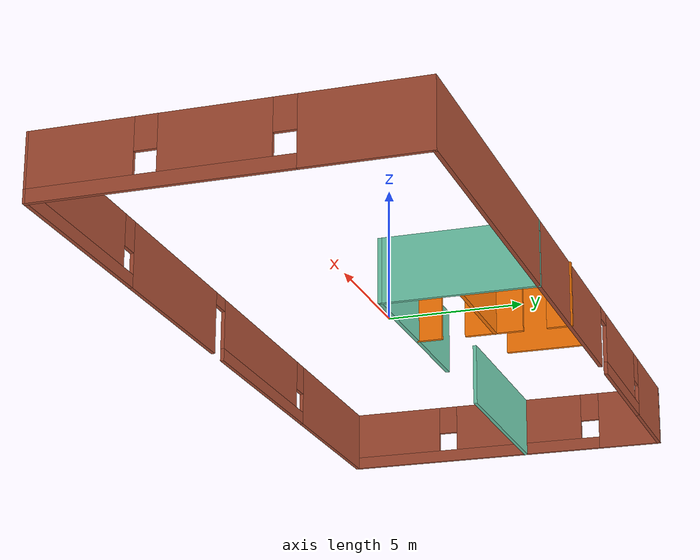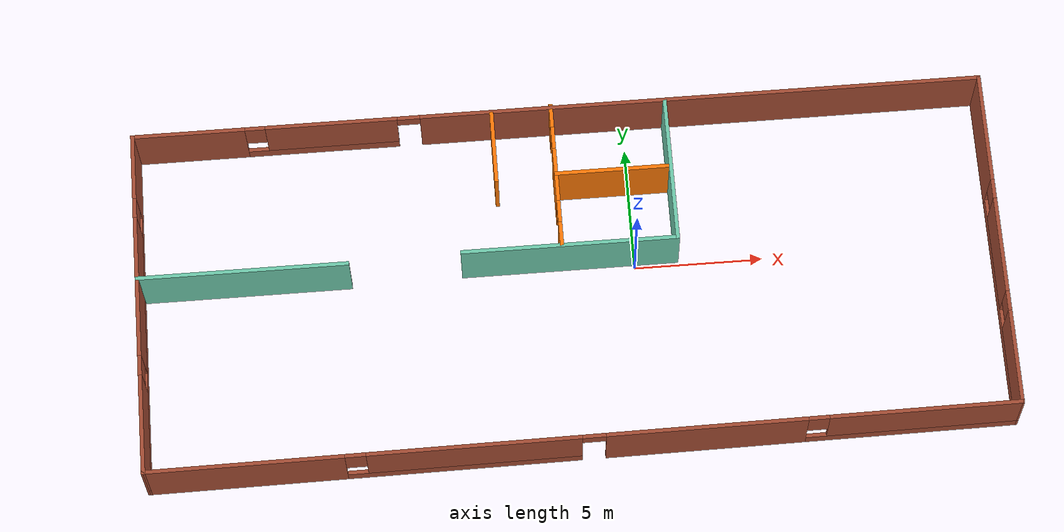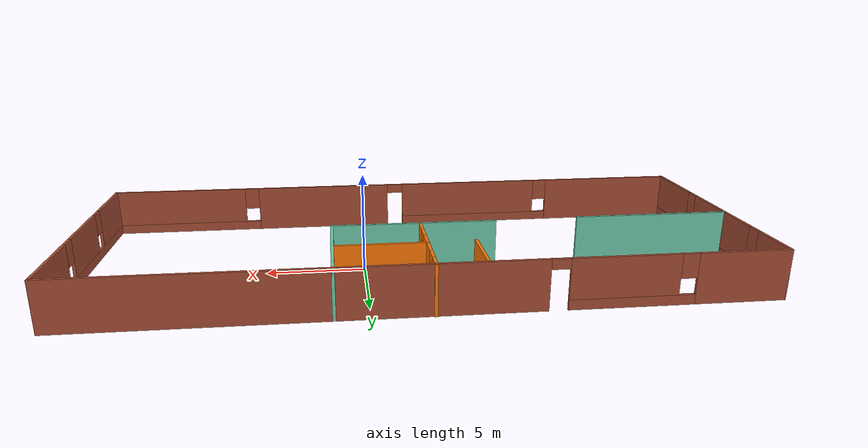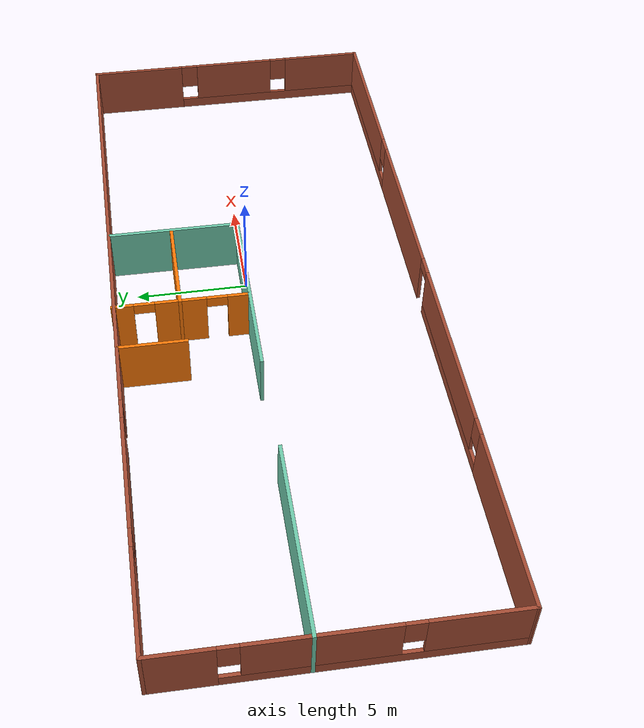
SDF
<?xml version='1.0'?>
<sdf version='1.6'>
  <model name='myrestaurant'>
    <pose frame=''>-2.62013 -0.858288 0 0 -0 0</pose>
    <link name='Wall_1'>
      <pose frame=''>0 6.89452 0 0 -0 0</pose>
      <visual name='Wall_1_Visual_0'>
        <pose frame=''>-14.5129 0 1.25 0 -0 0</pose>
        <geometry>
          <box>
            <size>4.47417 0.15 2.5</size>
          </box>
        </geometry>
        <material>
          <script>
            <uri>file://media/materials/scripts/gazebo.material</uri>
            <name>Gazebo/Bricks</name>
          </script>
          <ambient>1 1 1 1</ambient>
        </material>
        <meta>
          <layer>0</layer>
        </meta>
      </visual>
      <collision name='Wall_1_Collision_0'>
        <geometry>
          <box>
            <size>4.47417 0.15 2.5</size>
          </box>
        </geometry>
        <pose frame=''>-14.5129 0 1.25 0 -0 0</pose>
      </collision>
      <visual name='Wall_1_Visual_1'>
        <pose frame=''>5.67695 0 1.25 0 -0 0</pose>
        <geometry>
          <box>
            <size>22.1461 0.15 2.5</size>
          </box>
        </geometry>
        <material>
          <script>
            <uri>file://media/materials/scripts/gazebo.material</uri>
            <name>Gazebo/Bricks</name>
          </script>
          <ambient>1 1 1 1</ambient>
        </material>
        <meta>
          <layer>0</layer>
        </meta>
      </visual>
      <collision name='Wall_1_Collision_1'>
        <geometry>
          <box>
            <size>22.1461 0.15 2.5</size>
          </box>
        </geometry>
        <pose frame=''>5.67695 0 1.25 0 -0 0</pose>
      </collision>
      <visual name='Wall_1_Visual_2'>
        <pose frame=''>-9.28596 0 0.25 0 -0 0</pose>
        <geometry>
          <box>
            <size>5.97973 0.15 0.5</size>
          </box>
        </geometry>
        <material>
          <script>
            <uri>file://media/materials/scripts/gazebo.material</uri>
            <name>Gazebo/Bricks</name>
          </script>
          <ambient>1 1 1 1</ambient>
        </material>
        <meta>
          <layer>0</layer>
        </meta>
      </visual>
      <collision name='Wall_1_Collision_2'>
        <geometry>
          <box>
            <size>5.97973 0.15 0.5</size>
          </box>
        </geometry>
        <pose frame=''>-9.28596 0 0.25 0 -0 0</pose>
      </collision>
      <visual name='Wall_1_Visual_3'>
        <pose frame=''>-8.88596 0 1.5 0 -0 0</pose>
        <geometry>
          <box>
            <size>5.17973 0.15 2</size>
          </box>
        </geometry>
        <material>
          <script>
            <uri>file://media/materials/scripts/gazebo.material</uri>
            <name>Gazebo/Bricks</name>
          </script>
          <ambient>1 1 1 1</ambient>
        </material>
        <meta>
          <layer>0</layer>
        </meta>
      </visual>
      <collision name='Wall_1_Collision_3'>
        <geometry>
          <box>
            <size>5.17973 0.15 2</size>
          </box>
        </geometry>
        <pose frame=''>-8.88596 0 1.5 0 -0 0</pose>
      </collision>
      <visual name='Wall_1_Visual_4'>
        <pose frame=''>-11.8758 0 1.9 0 -0 0</pose>
        <geometry>
          <box>
            <size>0.8 0.15 1.2</size>
          </box>
        </geometry>
        <material>
          <script>
            <uri>file://media/materials/scripts/gazebo.material</uri>
            <name>Gazebo/Bricks</name>
          </script>
          <ambient>1 1 1 1</ambient>
        </material>
        <meta>
          <layer>0</layer>
        </meta>
      </visual>
      <collision name='Wall_1_Collision_4'>
        <geometry>
          <box>
            <size>0.8 0.15 1.2</size>
          </box>
        </geometry>
        <pose frame=''>-11.8758 0 1.9 0 -0 0</pose>
      </collision>
      <visual name='Wall_1_Visual_5'>
        <pose frame=''>-5.84609 0 2.25 0 -0 0</pose>
        <geometry>
          <box>
            <size>0.9 0.15 0.5</size>
          </box>
        </geometry>
        <material>
          <script>
            <uri>file://media/materials/scripts/gazebo.material</uri>
            <name>Gazebo/Bricks</name>
          </script>
          <ambient>1 1 1 1</ambient>
        </material>
        <meta>
          <layer>0</layer>
        </meta>
      </visual>
      <collision name='Wall_1_Collision_5'>
        <geometry>
          <box>
            <size>0.9 0.15 0.5</size>
          </box>
        </geometry>
        <pose frame=''>-5.84609 0 2.25 0 -0 0</pose>
      </collision>
    </link>
    <link name='Wall_10'>
      <collision name='Wall_10_Collision'>
        <geometry>
          <box>
            <size>6 0.15 2.5</size>
          </box>
        </geometry>
        <pose frame=''>0 0 1.25 0 -0 0</pose>
      </collision>
      <visual name='Wall_10_Visual'>
        <pose frame=''>0 0 1.25 0 -0 0</pose>
        <geometry>
          <box>
            <size>6 0.15 2.5</size>
          </box>
        </geometry>
        <material>
          <script>
            <uri>file://media/materials/scripts/gazebo.material</uri>
            <name>Gazebo/Grey</name>
          </script>
          <ambient>0.435294 0.796078 0.67451 1</ambient>
        </material>
        <meta>
          <layer>0</layer>
        </meta>
      </visual>
      <pose frame=''>4.24448 3.96952 0 0 0 -1.5708</pose>
    </link>
    <link name='Wall_11'>
      <collision name='Wall_11_Collision'>
        <geometry>
          <box>
            <size>8.5 0.15 2.5</size>
          </box>
        </geometry>
        <pose frame=''>0 0 1.25 0 -0 0</pose>
      </collision>
      <visual name='Wall_11_Visual'>
        <pose frame=''>0 0 1.25 0 -0 0</pose>
        <geometry>
          <box>
            <size>8.5 0.15 2.5</size>
          </box>
        </geometry>
        <material>
          <script>
            <uri>file://media/materials/scripts/gazebo.material</uri>
            <name>Gazebo/Grey</name>
          </script>
          <ambient>0.435294 0.796078 0.67451 1</ambient>
        </material>
        <meta>
          <layer>0</layer>
        </meta>
      </visual>
      <pose frame=''>0.069478 1.04452 0 0 -0 3.14159</pose>
    </link>
    <link name='Wall_14'>
      <collision name='Wall_14_Collision'>
        <geometry>
          <box>
            <size>3 0.15 2.5</size>
          </box>
        </geometry>
        <pose frame=''>0 0 1.25 0 -0 0</pose>
      </collision>
      <visual name='Wall_14_Visual'>
        <pose frame=''>0 0 1.25 0 -0 0</pose>
        <geometry>
          <box>
            <size>3 0.15 2.5</size>
          </box>
        </geometry>
        <material>
          <script>
            <uri>file://media/materials/scripts/gazebo.material</uri>
            <name>Gazebo/Grey</name>
          </script>
          <ambient>0.996078 0.47451 0.0196078 1</ambient>
        </material>
        <meta>
          <layer>0</layer>
        </meta>
      </visual>
      <pose frame=''>-2.58512 5.40799 0 0 0 -1.5708</pose>
    </link>
    <link name='Wall_2'>
      <pose frame=''>16.675 0.094516 0 0 0 -1.5708</pose>
      <visual name='Wall_2_Visual_0'>
        <pose frame=''>-4.63791 0 1.25 0 -0 0</pose>
        <geometry>
          <box>
            <size>4.47417 0.15 2.5</size>
          </box>
        </geometry>
        <material>
          <script>
            <uri>file://media/materials/scripts/gazebo.material</uri>
            <name>Gazebo/Bricks</name>
          </script>
          <ambient>1 1 1 1</ambient>
        </material>
        <meta>
          <layer>0</layer>
        </meta>
      </visual>
      <collision name='Wall_2_Collision_0'>
        <geometry>
          <box>
            <size>4.47417 0.15 2.5</size>
          </box>
        </geometry>
        <pose frame=''>-4.63791 0 1.25 0 -0 0</pose>
      </collision>
      <visual name='Wall_2_Visual_1'>
        <pose frame=''>2.23709 0 0.25 0 -0 0</pose>
        <geometry>
          <box>
            <size>9.27583 0.15 0.5</size>
          </box>
        </geometry>
        <material>
          <script>
            <uri>file://media/materials/scripts/gazebo.material</uri>
            <name>Gazebo/Bricks</name>
          </script>
          <ambient>1 1 1 1</ambient>
        </material>
        <meta>
          <layer>0</layer>
        </meta>
      </visual>
      <collision name='Wall_2_Collision_1'>
        <geometry>
          <box>
            <size>9.27583 0.15 0.5</size>
          </box>
        </geometry>
        <pose frame=''>2.23709 0 0.25 0 -0 0</pose>
      </collision>
      <visual name='Wall_2_Visual_2'>
        <pose frame=''>0.337234 0 1.5 0 -0 0</pose>
        <geometry>
          <box>
            <size>3.87612 0.15 2</size>
          </box>
        </geometry>
        <material>
          <script>
            <uri>file://media/materials/scripts/gazebo.material</uri>
            <name>Gazebo/Bricks</name>
          </script>
          <ambient>1 1 1 1</ambient>
        </material>
        <meta>
          <layer>0</layer>
        </meta>
      </visual>
      <collision name='Wall_2_Collision_2'>
        <geometry>
          <box>
            <size>3.87612 0.15 2</size>
          </box>
        </geometry>
        <pose frame=''>0.337234 0 1.5 0 -0 0</pose>
      </collision>
      <visual name='Wall_2_Visual_3'>
        <pose frame=''>4.97515 0 1.5 0 -0 0</pose>
        <geometry>
          <box>
            <size>3.79971 0.15 2</size>
          </box>
        </geometry>
        <material>
          <script>
            <uri>file://media/materials/scripts/gazebo.material</uri>
            <name>Gazebo/Bricks</name>
          </script>
          <ambient>1 1 1 1</ambient>
        </material>
        <meta>
          <layer>0</layer>
        </meta>
      </visual>
      <collision name='Wall_2_Collision_3'>
        <geometry>
          <box>
            <size>3.79971 0.15 2</size>
          </box>
        </geometry>
        <pose frame=''>4.97515 0 1.5 0 -0 0</pose>
      </collision>
      <visual name='Wall_2_Visual_4'>
        <pose frame=''>-2.00083 0 1.9 0 -0 0</pose>
        <geometry>
          <box>
            <size>0.8 0.15 1.2</size>
          </box>
        </geometry>
        <material>
          <script>
            <uri>file://media/materials/scripts/gazebo.material</uri>
            <name>Gazebo/Bricks</name>
          </script>
          <ambient>1 1 1 1</ambient>
        </material>
        <meta>
          <layer>0</layer>
        </meta>
      </visual>
      <collision name='Wall_2_Collision_4'>
        <geometry>
          <box>
            <size>0.8 0.15 1.2</size>
          </box>
        </geometry>
        <pose frame=''>-2.00083 0 1.9 0 -0 0</pose>
      </collision>
      <visual name='Wall_2_Visual_5'>
        <pose frame=''>2.67529 0 1.9 0 -0 0</pose>
        <geometry>
          <box>
            <size>0.8 0.15 1.2</size>
          </box>
        </geometry>
        <material>
          <script>
            <uri>file://media/materials/scripts/gazebo.material</uri>
            <name>Gazebo/Bricks</name>
          </script>
          <ambient>1 1 1 1</ambient>
        </material>
        <meta>
          <layer>0</layer>
        </meta>
      </visual>
      <collision name='Wall_2_Collision_5'>
        <geometry>
          <box>
            <size>0.8 0.15 1.2</size>
          </box>
        </geometry>
        <pose frame=''>2.67529 0 1.9 0 -0 0</pose>
      </collision>
    </link>
    <link name='Wall_20'>
      <pose frame=''>-0.247057 4.03104 0 0 0 -1.5708</pose>
      <visual name='Wall_20_Visual_0'>
        <pose frame=''>-2.51069 0 1.25 0 -0 0</pose>
        <geometry>
          <box>
            <size>0.978613 0.15 2.5</size>
          </box>
        </geometry>
        <material>
          <script>
            <uri>file://media/materials/scripts/gazebo.material</uri>
            <name>Gazebo/Grey</name>
          </script>
          <ambient>0.996078 0.47451 0.0196078 1</ambient>
        </material>
        <meta>
          <layer>0</layer>
        </meta>
      </visual>
      <collision name='Wall_20_Collision_0'>
        <geometry>
          <box>
            <size>0.978613 0.15 2.5</size>
          </box>
        </geometry>
        <pose frame=''>-2.51069 0 1.25 0 -0 0</pose>
      </collision>
      <visual name='Wall_20_Visual_1'>
        <pose frame=''>-0.002426 0 1.25 0 -0 0</pose>
        <geometry>
          <box>
            <size>2.23792 0.15 2.5</size>
          </box>
        </geometry>
        <material>
          <script>
            <uri>file://media/materials/scripts/gazebo.material</uri>
            <name>Gazebo/Grey</name>
          </script>
          <ambient>0.996078 0.47451 0.0196078 1</ambient>
        </material>
        <meta>
          <layer>0</layer>
        </meta>
      </visual>
      <collision name='Wall_20_Collision_1'>
        <geometry>
          <box>
            <size>2.23792 0.15 2.5</size>
          </box>
        </geometry>
        <pose frame=''>-0.002426 0 1.25 0 -0 0</pose>
      </collision>
      <visual name='Wall_20_Visual_2'>
        <pose frame=''>2.50827 0 1.25 0 -0 0</pose>
        <geometry>
          <box>
            <size>0.983465 0.15 2.5</size>
          </box>
        </geometry>
        <material>
          <script>
            <uri>file://media/materials/scripts/gazebo.material</uri>
            <name>Gazebo/Grey</name>
          </script>
          <ambient>0.996078 0.47451 0.0196078 1</ambient>
        </material>
        <meta>
          <layer>0</layer>
        </meta>
      </visual>
      <collision name='Wall_20_Collision_2'>
        <geometry>
          <box>
            <size>0.983465 0.15 2.5</size>
          </box>
        </geometry>
        <pose frame=''>2.50827 0 1.25 0 -0 0</pose>
      </collision>
      <visual name='Wall_20_Visual_3'>
        <pose frame=''>-1.57139 0 2.25 0 -0 0</pose>
        <geometry>
          <box>
            <size>0.9 0.15 0.5</size>
          </box>
        </geometry>
        <material>
          <script>
            <uri>file://media/materials/scripts/gazebo.material</uri>
            <name>Gazebo/Grey</name>
          </script>
          <ambient>0.996078 0.47451 0.0196078 1</ambient>
        </material>
        <meta>
          <layer>0</layer>
        </meta>
      </visual>
      <collision name='Wall_20_Collision_3'>
        <geometry>
          <box>
            <size>0.9 0.15 0.5</size>
          </box>
        </geometry>
        <pose frame=''>-1.57139 0 2.25 0 -0 0</pose>
      </collision>
      <visual name='Wall_20_Visual_4'>
        <pose frame=''>1.56654 0 2.25 0 -0 0</pose>
        <geometry>
          <box>
            <size>0.9 0.15 0.5</size>
          </box>
        </geometry>
        <material>
          <script>
            <uri>file://media/materials/scripts/gazebo.material</uri>
            <name>Gazebo/Grey</name>
          </script>
          <ambient>0.996078 0.47451 0.0196078 1</ambient>
        </material>
        <meta>
          <layer>0</layer>
        </meta>
      </visual>
      <collision name='Wall_20_Collision_4'>
        <geometry>
          <box>
            <size>0.9 0.15 0.5</size>
          </box>
        </geometry>
        <pose frame=''>1.56654 0 2.25 0 -0 0</pose>
      </collision>
    </link>
    <link name='Wall_22'>
      <collision name='Wall_22_Collision'>
        <geometry>
          <box>
            <size>4.5 0.15 2.5</size>
          </box>
        </geometry>
        <pose frame=''>0 0 1.25 0 -0 0</pose>
      </collision>
      <visual name='Wall_22_Visual'>
        <pose frame=''>0 0 1.25 0 -0 0</pose>
        <geometry>
          <box>
            <size>4.5 0.15 2.5</size>
          </box>
        </geometry>
        <material>
          <script>
            <uri>file://media/materials/scripts/gazebo.material</uri>
            <name>Gazebo/Grey</name>
          </script>
          <ambient>0.996078 0.47451 0.0196078 1</ambient>
        </material>
        <meta>
          <layer>0</layer>
        </meta>
      </visual>
      <pose frame=''>1.92794 4.06423 0 0 -0 0</pose>
    </link>
    <link name='Wall_5'>
      <pose frame=''>-16.675 -0.030484 0 0 0 -1.5708</pose>
      <visual name='Wall_5_Visual_0'>
        <pose frame=''>-5.65507 0 1.25 0 -0 0</pose>
        <geometry>
          <box>
            <size>2.68987 0.15 2.5</size>
          </box>
        </geometry>
        <material>
          <script>
            <uri>file://media/materials/scripts/gazebo.material</uri>
            <name>Gazebo/Bricks</name>
          </script>
          <ambient>1 1 1 1</ambient>
        </material>
        <meta>
          <layer>0</layer>
        </meta>
      </visual>
      <collision name='Wall_5_Collision_0'>
        <geometry>
          <box>
            <size>2.68987 0.15 2.5</size>
          </box>
        </geometry>
        <pose frame=''>-5.65507 0 1.25 0 -0 0</pose>
      </collision>
      <visual name='Wall_5_Visual_1'>
        <pose frame=''>1.34493 0 0.25 0 -0 0</pose>
        <geometry>
          <box>
            <size>11.3101 0.15 0.5</size>
          </box>
        </geometry>
        <material>
          <script>
            <uri>file://media/materials/scripts/gazebo.material</uri>
            <name>Gazebo/Bricks</name>
          </script>
          <ambient>1 1 1 1</ambient>
        </material>
        <meta>
          <layer>0</layer>
        </meta>
      </visual>
      <collision name='Wall_5_Collision_1'>
        <geometry>
          <box>
            <size>11.3101 0.15 0.5</size>
          </box>
        </geometry>
        <pose frame=''>1.34493 0 0.25 0 -0 0</pose>
      </collision>
      <visual name='Wall_5_Visual_2'>
        <pose frame=''>-0.649157 0 1.5 0 -0 0</pose>
        <geometry>
          <box>
            <size>5.72196 0.15 2</size>
          </box>
        </geometry>
        <material>
          <script>
            <uri>file://media/materials/scripts/gazebo.material</uri>
            <name>Gazebo/Bricks</name>
          </script>
          <ambient>1 1 1 1</ambient>
        </material>
        <meta>
          <layer>0</layer>
        </meta>
      </visual>
      <collision name='Wall_5_Collision_2'>
        <geometry>
          <box>
            <size>5.72196 0.15 2</size>
          </box>
        </geometry>
        <pose frame=''>-0.649157 0 1.5 0 -0 0</pose>
      </collision>
      <visual name='Wall_5_Visual_3'>
        <pose frame=''>5.00591 0 1.5 0 -0 0</pose>
        <geometry>
          <box>
            <size>3.98818 0.15 2</size>
          </box>
        </geometry>
        <material>
          <script>
            <uri>file://media/materials/scripts/gazebo.material</uri>
            <name>Gazebo/Bricks</name>
          </script>
          <ambient>1 1 1 1</ambient>
        </material>
        <meta>
          <layer>0</layer>
        </meta>
      </visual>
      <collision name='Wall_5_Collision_3'>
        <geometry>
          <box>
            <size>3.98818 0.15 2</size>
          </box>
        </geometry>
        <pose frame=''>5.00591 0 1.5 0 -0 0</pose>
      </collision>
      <visual name='Wall_5_Visual_4'>
        <pose frame=''>-3.91013 0 1.9 0 -0 0</pose>
        <geometry>
          <box>
            <size>0.8 0.15 1.2</size>
          </box>
        </geometry>
        <material>
          <script>
            <uri>file://media/materials/scripts/gazebo.material</uri>
            <name>Gazebo/Bricks</name>
          </script>
          <ambient>1 1 1 1</ambient>
        </material>
        <meta>
          <layer>0</layer>
        </meta>
      </visual>
      <collision name='Wall_5_Collision_4'>
        <geometry>
          <box>
            <size>0.8 0.15 1.2</size>
          </box>
        </geometry>
        <pose frame=''>-3.91013 0 1.9 0 -0 0</pose>
      </collision>
      <visual name='Wall_5_Visual_5'>
        <pose frame=''>2.61182 0 1.9 0 -0 0</pose>
        <geometry>
          <box>
            <size>0.8 0.15 1.2</size>
          </box>
        </geometry>
        <material>
          <script>
            <uri>file://media/materials/scripts/gazebo.material</uri>
            <name>Gazebo/Bricks</name>
          </script>
          <ambient>1 1 1 1</ambient>
        </material>
        <meta>
          <layer>0</layer>
        </meta>
      </visual>
      <collision name='Wall_5_Collision_5'>
        <geometry>
          <box>
            <size>0.8 0.15 1.2</size>
          </box>
        </geometry>
        <pose frame=''>2.61182 0 1.9 0 -0 0</pose>
      </collision>
    </link>
    <link name='Wall_6'>
      <pose frame=''>0 -6.83048 0 0 -0 0.007496</pose>
      <visual name='Wall_6_Visual_0'>
        <pose frame=''>-12.9142 0 1.25 0 -0 0</pose>
        <geometry>
          <box>
            <size>7.67252 0.15 2.5</size>
          </box>
        </geometry>
        <material>
          <script>
            <uri>file://media/materials/scripts/gazebo.material</uri>
            <name>Gazebo/Bricks</name>
          </script>
          <ambient>1 1 1 1</ambient>
        </material>
        <meta>
          <layer>0</layer>
        </meta>
      </visual>
      <collision name='Wall_6_Collision_0'>
        <geometry>
          <box>
            <size>7.67252 0.15 2.5</size>
          </box>
        </geometry>
        <pose frame=''>-12.9142 0 1.25 0 -0 0</pose>
      </collision>
      <visual name='Wall_6_Visual_1'>
        <pose frame=''>4.66954 0 1.25 0 -0 0</pose>
        <geometry>
          <box>
            <size>7.7026 0.15 2.5</size>
          </box>
        </geometry>
        <material>
          <script>
            <uri>file://media/materials/scripts/gazebo.material</uri>
            <name>Gazebo/Bricks</name>
          </script>
          <ambient>1 1 1 1</ambient>
        </material>
        <meta>
          <layer>0</layer>
        </meta>
      </visual>
      <collision name='Wall_6_Collision_1'>
        <geometry>
          <box>
            <size>7.7026 0.15 2.5</size>
          </box>
        </geometry>
        <pose frame=''>4.66954 0 1.25 0 -0 0</pose>
      </collision>
      <visual name='Wall_6_Visual_2'>
        <pose frame=''>-4.57985 0 0.25 0 -0 0</pose>
        <geometry>
          <box>
            <size>8.99619 0.15 0.5</size>
          </box>
        </geometry>
        <material>
          <script>
            <uri>file://media/materials/scripts/gazebo.material</uri>
            <name>Gazebo/Bricks</name>
          </script>
          <ambient>1 1 1 1</ambient>
        </material>
        <meta>
          <layer>0</layer>
        </meta>
      </visual>
      <collision name='Wall_6_Collision_2'>
        <geometry>
          <box>
            <size>8.99619 0.15 0.5</size>
          </box>
        </geometry>
        <pose frame=''>-4.57985 0 0.25 0 -0 0</pose>
      </collision>
      <visual name='Wall_6_Visual_3'>
        <pose frame=''>12.6357 0 0.25 0 -0 0</pose>
        <geometry>
          <box>
            <size>8.22963 0.15 0.5</size>
          </box>
        </geometry>
        <material>
          <script>
            <uri>file://media/materials/scripts/gazebo.material</uri>
            <name>Gazebo/Bricks</name>
          </script>
          <ambient>1 1 1 1</ambient>
        </material>
        <meta>
          <layer>0</layer>
        </meta>
      </visual>
      <collision name='Wall_6_Collision_3'>
        <geometry>
          <box>
            <size>8.22963 0.15 0.5</size>
          </box>
        </geometry>
        <pose frame=''>12.6357 0 0.25 0 -0 0</pose>
      </collision>
      <visual name='Wall_6_Visual_4'>
        <pose frame=''>-4.17985 0 1.5 0 -0 0</pose>
        <geometry>
          <box>
            <size>8.19619 0.15 2</size>
          </box>
        </geometry>
        <material>
          <script>
            <uri>file://media/materials/scripts/gazebo.material</uri>
            <name>Gazebo/Bricks</name>
          </script>
          <ambient>1 1 1 1</ambient>
        </material>
        <meta>
          <layer>0</layer>
        </meta>
      </visual>
      <collision name='Wall_6_Collision_4'>
        <geometry>
          <box>
            <size>8.19619 0.15 2</size>
          </box>
        </geometry>
        <pose frame=''>-4.17985 0 1.5 0 -0 0</pose>
      </collision>
      <visual name='Wall_6_Visual_5'>
        <pose frame=''>-4.17985 0 1.5 0 -0 0</pose>
        <geometry>
          <box>
            <size>8.19619 0.15 2</size>
          </box>
        </geometry>
        <material>
          <script>
            <uri>file://media/materials/scripts/gazebo.material</uri>
            <name>Gazebo/Bricks</name>
          </script>
          <ambient>1 1 1 1</ambient>
        </material>
        <meta>
          <layer>0</layer>
        </meta>
      </visual>
      <collision name='Wall_6_Collision_5'>
        <geometry>
          <box>
            <size>8.19619 0.15 2</size>
          </box>
        </geometry>
        <pose frame=''>-4.17985 0 1.5 0 -0 0</pose>
      </collision>
      <visual name='Wall_6_Visual_6'>
        <pose frame=''>13.0357 0 1.5 0 -0 0</pose>
        <geometry>
          <box>
            <size>7.42963 0.15 2</size>
          </box>
        </geometry>
        <material>
          <script>
            <uri>file://media/materials/scripts/gazebo.material</uri>
            <name>Gazebo/Bricks</name>
          </script>
          <ambient>1 1 1 1</ambient>
        </material>
        <meta>
          <layer>0</layer>
        </meta>
      </visual>
      <collision name='Wall_6_Collision_6'>
        <geometry>
          <box>
            <size>7.42963 0.15 2</size>
          </box>
        </geometry>
        <pose frame=''>13.0357 0 1.5 0 -0 0</pose>
      </collision>
      <visual name='Wall_6_Visual_7'>
        <pose frame=''>-8.67794 0 1.9 0 -0 0</pose>
        <geometry>
          <box>
            <size>0.8 0.15 1.2</size>
          </box>
        </geometry>
        <material>
          <script>
            <uri>file://media/materials/scripts/gazebo.material</uri>
            <name>Gazebo/Bricks</name>
          </script>
          <ambient>1 1 1 1</ambient>
        </material>
        <meta>
          <layer>0</layer>
        </meta>
      </visual>
      <collision name='Wall_6_Collision_7'>
        <geometry>
          <box>
            <size>0.8 0.15 1.2</size>
          </box>
        </geometry>
        <pose frame=''>-8.67794 0 1.9 0 -0 0</pose>
      </collision>
      <visual name='Wall_6_Visual_8'>
        <pose frame=''>8.92084 0 1.9 0 -0 0</pose>
        <geometry>
          <box>
            <size>0.8 0.15 1.2</size>
          </box>
        </geometry>
        <material>
          <script>
            <uri>file://media/materials/scripts/gazebo.material</uri>
            <name>Gazebo/Bricks</name>
          </script>
          <ambient>1 1 1 1</ambient>
        </material>
        <meta>
          <layer>0</layer>
        </meta>
      </visual>
      <collision name='Wall_6_Collision_8'>
        <geometry>
          <box>
            <size>0.8 0.15 1.2</size>
          </box>
        </geometry>
        <pose frame=''>8.92084 0 1.9 0 -0 0</pose>
      </collision>
      <visual name='Wall_6_Visual_9'>
        <pose frame=''>0.368244 0 2.25 0 -0 0</pose>
        <geometry>
          <box>
            <size>0.9 0.15 0.5</size>
          </box>
        </geometry>
        <material>
          <script>
            <uri>file://media/materials/scripts/gazebo.material</uri>
            <name>Gazebo/Bricks</name>
          </script>
          <ambient>1 1 1 1</ambient>
        </material>
        <meta>
          <layer>0</layer>
        </meta>
      </visual>
      <collision name='Wall_6_Collision_9'>
        <geometry>
          <box>
            <size>0.9 0.15 0.5</size>
          </box>
        </geometry>
        <pose frame=''>0.368244 0 2.25 0 -0 0</pose>
      </collision>
      <visual name='Wall_6_Visual_10'>
        <pose frame=''>0.368244 0 2.25 0 -0 0</pose>
        <geometry>
          <box>
            <size>0.9 0.15 0.5</size>
          </box>
        </geometry>
        <material>
          <script>
            <uri>file://media/materials/scripts/gazebo.material</uri>
            <name>Gazebo/Bricks</name>
          </script>
          <ambient>1 1 1 1</ambient>
        </material>
        <meta>
          <layer>0</layer>
        </meta>
      </visual>
      <collision name='Wall_6_Collision_10'>
        <geometry>
          <box>
            <size>0.9 0.15 0.5</size>
          </box>
        </geometry>
        <pose frame=''>0.368244 0 2.25 0 -0 0</pose>
      </collision>
    </link>
    <link name='Wall_8'>
      <collision name='Wall_8_Collision'>
        <geometry>
          <box>
            <size>8.25 0.15 2.5</size>
          </box>
        </geometry>
        <pose frame=''>0 0 1.25 0 -0 0</pose>
      </collision>
      <visual name='Wall_8_Visual'>
        <pose frame=''>0 0 1.25 0 -0 0</pose>
        <geometry>
          <box>
            <size>8.25 0.15 2.5</size>
          </box>
        </geometry>
        <material>
          <script>
            <uri>file://media/materials/scripts/gazebo.material</uri>
            <name>Gazebo/Grey</name>
          </script>
          <ambient>0.435294 0.796078 0.67451 1</ambient>
        </material>
        <meta>
          <layer>0</layer>
        </meta>
      </visual>
      <pose frame=''>-12.625 0.926312 0 0 -0 0</pose>
    </link>
    <static>1</static>
  </model>
</sdf>
